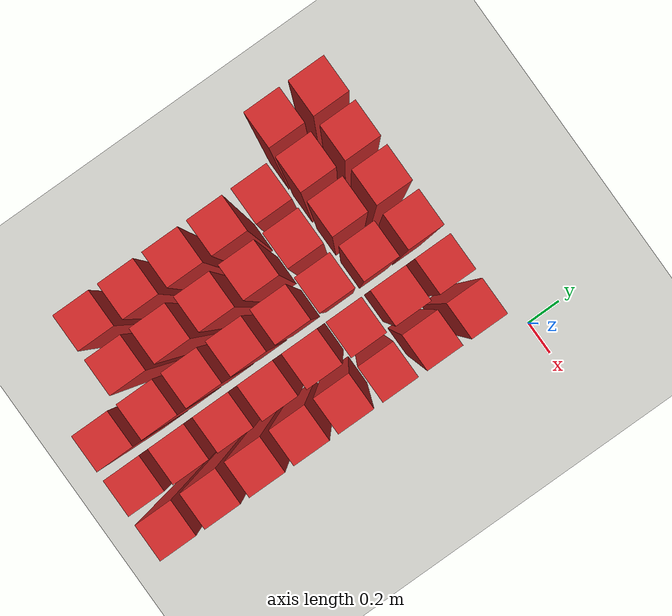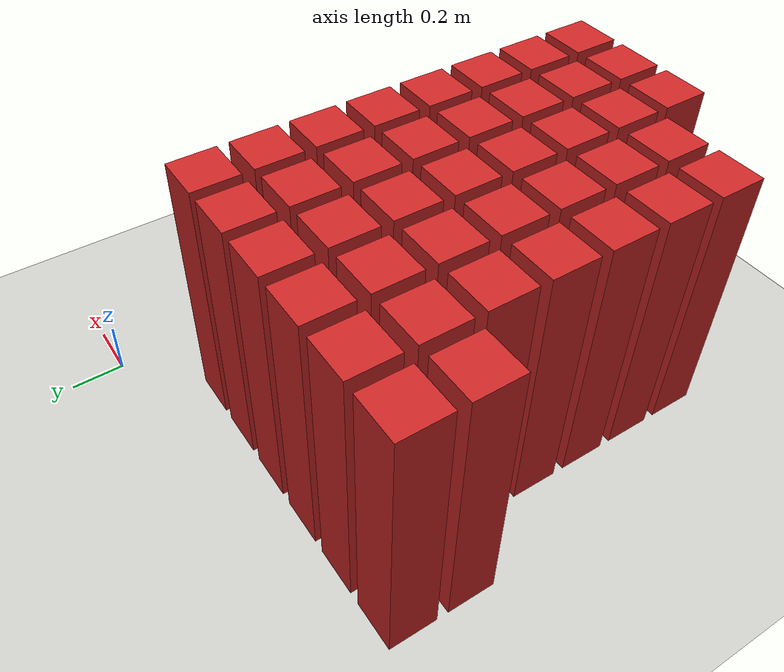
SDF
<sdf version="1.7">
 <world name="default">
  <model name="ground_plane">
   <static>1</static>
   <link name="link">
    <collision name="collision">
     <geometry><plane><normal>0 0 1</normal><size>100 100</size></plane></geometry>
     <surface>
      <contact><collide_bitmask>65535</collide_bitmask></contact>
      <friction><ode><mu>100</mu><mu2>50</mu2></ode></friction>
     </surface>
    </collision>
    <visual name="visual">
     <cast_shadows>0</cast_shadows>
     <geometry><plane><normal>0 0 1</normal><size>100 100</size></plane></geometry>
     <material>
      <script><uri>file://media/materials/scripts/gazebo.material</uri><name>Gazebo/CeilingTiled</name></script>
     </material>
    </visual>
   </link>
  </model>
  <model name="wall77">
   <link name="link">
    <pose>0 0 0.5 0 -0 0</pose>
    <inertial>
     <mass>0.5167</mass>
     <inertia>
      <ixx>0.000861167</ixx>
      <ixy>0</ixy>
      <ixz>0</ixz>
      <iyy>0.000861167</iyy>
      <iyz>0</iyz>
      <izz>0.000861167</izz>
     </inertia>
    </inertial>
    <collision name="collision">
     <geometry><box><size>0.21 0.21 1</size></box></geometry>
     <surface>
      <contact>
       <poissons_ratio>0.347</poissons_ratio>
       <elastic_modulus>8.8e+09</elastic_modulus>
       <ode><kp>100000</kp><kd>100</kd><max_vel>100</max_vel><min_depth>0.001</min_depth></ode>
      </contact>
      <friction>
       <torsional>
        <coefficient>1</coefficient>
        <use_patch_radius>0</use_patch_radius>
        <surface_radius>0.01</surface_radius>
       </torsional>
      </friction>
     </surface>
    </collision>
    <visual name="visual">
     <geometry><box><size>0.175 0.175 1</size></box></geometry>
     <material>
      <script><uri>file://media/materials/scripts/gazebo.material</uri><name>Gazebo/Red</name></script>
     </material>
    </visual>
   </link>
   <pose>-0.76087 -1.84783 0 0 -0 0</pose>
  </model>
  <model name="wall78">
   <link name="link">
    <pose>0 0 0.5 0 -0 0</pose>
    <inertial>
     <mass>0.5167</mass>
     <inertia>
      <ixx>0.000861167</ixx>
      <ixy>0</ixy>
      <ixz>0</ixz>
      <iyy>0.000861167</iyy>
      <iyz>0</iyz>
      <izz>0.000861167</izz>
     </inertia>
    </inertial>
    <collision name="collision">
     <geometry><box><size>0.21 0.21 1</size></box></geometry>
     <surface>
      <contact>
       <poissons_ratio>0.347</poissons_ratio>
       <elastic_modulus>8.8e+09</elastic_modulus>
       <ode><kp>100000</kp><kd>100</kd><max_vel>100</max_vel><min_depth>0.001</min_depth></ode>
      </contact>
      <friction>
       <torsional>
        <coefficient>1</coefficient>
        <use_patch_radius>0</use_patch_radius>
        <surface_radius>0.01</surface_radius>
       </torsional>
      </friction>
     </surface>
    </collision>
    <visual name="visual">
     <geometry><box><size>0.175 0.175 1</size></box></geometry>
     <material>
      <script><uri>file://media/materials/scripts/gazebo.material</uri><name>Gazebo/Red</name></script>
     </material>
    </visual>
   </link>
   <pose>-0.543478 -1.84783 0 0 -0 0</pose>
  </model>
  <model name="wall79">
   <link name="link">
    <pose>0 0 0.5 0 -0 0</pose>
    <inertial>
     <mass>0.5167</mass>
     <inertia>
      <ixx>0.000861167</ixx>
      <ixy>0</ixy>
      <ixz>0</ixz>
      <iyy>0.000861167</iyy>
      <iyz>0</iyz>
      <izz>0.000861167</izz>
     </inertia>
    </inertial>
    <collision name="collision">
     <geometry><box><size>0.21 0.21 1</size></box></geometry>
     <surface>
      <contact>
       <poissons_ratio>0.347</poissons_ratio>
       <elastic_modulus>8.8e+09</elastic_modulus>
       <ode><kp>100000</kp><kd>100</kd><max_vel>100</max_vel><min_depth>0.001</min_depth></ode>
      </contact>
      <friction>
       <torsional>
        <coefficient>1</coefficient>
        <use_patch_radius>0</use_patch_radius>
        <surface_radius>0.01</surface_radius>
       </torsional>
      </friction>
     </surface>
    </collision>
    <visual name="visual">
     <geometry><box><size>0.175 0.175 1</size></box></geometry>
     <material>
      <script><uri>file://media/materials/scripts/gazebo.material</uri><name>Gazebo/Red</name></script>
     </material>
    </visual>
   </link>
   <pose>-0.326087 -1.84783 0 0 -0 0</pose>
  </model>
  <model name="wall98">
   <link name="link">
    <pose>0 0 0.5 0 -0 0</pose>
    <inertial>
     <mass>0.5167</mass>
     <inertia>
      <ixx>0.000861167</ixx>
      <ixy>0</ixy>
      <ixz>0</ixz>
      <iyy>0.000861167</iyy>
      <iyz>0</iyz>
      <izz>0.000861167</izz>
     </inertia>
    </inertial>
    <collision name="collision">
     <geometry><box><size>0.21 0.21 1</size></box></geometry>
     <surface>
      <contact>
       <poissons_ratio>0.347</poissons_ratio>
       <elastic_modulus>8.8e+09</elastic_modulus>
       <ode><kp>100000</kp><kd>100</kd><max_vel>100</max_vel><min_depth>0.001</min_depth></ode>
      </contact>
      <friction>
       <torsional>
        <coefficient>1</coefficient>
        <use_patch_radius>0</use_patch_radius>
        <surface_radius>0.01</surface_radius>
       </torsional>
      </friction>
     </surface>
    </collision>
    <visual name="visual">
     <geometry><box><size>0.175 0.175 1</size></box></geometry>
     <material>
      <script><uri>file://media/materials/scripts/gazebo.material</uri><name>Gazebo/Red</name></script>
     </material>
    </visual>
   </link>
   <pose>-1.19565 -1.63043 0 0 -0 0</pose>
  </model>
  <model name="wall99">
   <link name="link">
    <pose>0 0 0.5 0 -0 0</pose>
    <inertial>
     <mass>0.5167</mass>
     <inertia>
      <ixx>0.000861167</ixx>
      <ixy>0</ixy>
      <ixz>0</ixz>
      <iyy>0.000861167</iyy>
      <iyz>0</iyz>
      <izz>0.000861167</izz>
     </inertia>
    </inertial>
    <collision name="collision">
     <geometry><box><size>0.21 0.21 1</size></box></geometry>
     <surface>
      <contact>
       <poissons_ratio>0.347</poissons_ratio>
       <elastic_modulus>8.8e+09</elastic_modulus>
       <ode><kp>100000</kp><kd>100</kd><max_vel>100</max_vel><min_depth>0.001</min_depth></ode>
      </contact>
      <friction>
       <torsional>
        <coefficient>1</coefficient>
        <use_patch_radius>0</use_patch_radius>
        <surface_radius>0.01</surface_radius>
       </torsional>
      </friction>
     </surface>
    </collision>
    <visual name="visual">
     <geometry><box><size>0.175 0.175 1</size></box></geometry>
     <material>
      <script><uri>file://media/materials/scripts/gazebo.material</uri><name>Gazebo/Red</name></script>
     </material>
    </visual>
   </link>
   <pose>-0.978261 -1.63043 0 0 -0 0</pose>
  </model>
  <model name="wall100">
   <link name="link">
    <pose>0 0 0.5 0 -0 0</pose>
    <inertial>
     <mass>0.5167</mass>
     <inertia>
      <ixx>0.000861167</ixx>
      <ixy>0</ixy>
      <ixz>0</ixz>
      <iyy>0.000861167</iyy>
      <iyz>0</iyz>
      <izz>0.000861167</izz>
     </inertia>
    </inertial>
    <collision name="collision">
     <geometry><box><size>0.21 0.21 1</size></box></geometry>
     <surface>
      <contact>
       <poissons_ratio>0.347</poissons_ratio>
       <elastic_modulus>8.8e+09</elastic_modulus>
       <ode><kp>100000</kp><kd>100</kd><max_vel>100</max_vel><min_depth>0.001</min_depth></ode>
      </contact>
      <friction>
       <torsional>
        <coefficient>1</coefficient>
        <use_patch_radius>0</use_patch_radius>
        <surface_radius>0.01</surface_radius>
       </torsional>
      </friction>
     </surface>
    </collision>
    <visual name="visual">
     <geometry><box><size>0.175 0.175 1</size></box></geometry>
     <material>
      <script><uri>file://media/materials/scripts/gazebo.material</uri><name>Gazebo/Red</name></script>
     </material>
    </visual>
   </link>
   <pose>-0.76087 -1.63043 0 0 -0 0</pose>
  </model>
  <model name="wall101">
   <link name="link">
    <pose>0 0 0.5 0 -0 0</pose>
    <inertial>
     <mass>0.5167</mass>
     <inertia>
      <ixx>0.000861167</ixx>
      <ixy>0</ixy>
      <ixz>0</ixz>
      <iyy>0.000861167</iyy>
      <iyz>0</iyz>
      <izz>0.000861167</izz>
     </inertia>
    </inertial>
    <collision name="collision">
     <geometry><box><size>0.21 0.21 1</size></box></geometry>
     <surface>
      <contact>
       <poissons_ratio>0.347</poissons_ratio>
       <elastic_modulus>8.8e+09</elastic_modulus>
       <ode><kp>100000</kp><kd>100</kd><max_vel>100</max_vel><min_depth>0.001</min_depth></ode>
      </contact>
      <friction>
       <torsional>
        <coefficient>1</coefficient>
        <use_patch_radius>0</use_patch_radius>
        <surface_radius>0.01</surface_radius>
       </torsional>
      </friction>
     </surface>
    </collision>
    <visual name="visual">
     <geometry><box><size>0.175 0.175 1</size></box></geometry>
     <material>
      <script><uri>file://media/materials/scripts/gazebo.material</uri><name>Gazebo/Red</name></script>
     </material>
    </visual>
   </link>
   <pose>-0.543478 -1.63043 0 0 -0 0</pose>
  </model>
  <model name="wall102">
   <link name="link">
    <pose>0 0 0.5 0 -0 0</pose>
    <inertial>
     <mass>0.5167</mass>
     <inertia>
      <ixx>0.000861167</ixx>
      <ixy>0</ixy>
      <ixz>0</ixz>
      <iyy>0.000861167</iyy>
      <iyz>0</iyz>
      <izz>0.000861167</izz>
     </inertia>
    </inertial>
    <collision name="collision">
     <geometry><box><size>0.21 0.21 1</size></box></geometry>
     <surface>
      <contact>
       <poissons_ratio>0.347</poissons_ratio>
       <elastic_modulus>8.8e+09</elastic_modulus>
       <ode><kp>100000</kp><kd>100</kd><max_vel>100</max_vel><min_depth>0.001</min_depth></ode>
      </contact>
      <friction>
       <torsional>
        <coefficient>1</coefficient>
        <use_patch_radius>0</use_patch_radius>
        <surface_radius>0.01</surface_radius>
       </torsional>
      </friction>
     </surface>
    </collision>
    <visual name="visual">
     <geometry><box><size>0.175 0.175 1</size></box></geometry>
     <material>
      <script><uri>file://media/materials/scripts/gazebo.material</uri><name>Gazebo/Red</name></script>
     </material>
    </visual>
   </link>
   <pose>-0.326087 -1.63043 0 0 -0 0</pose>
  </model>
  <model name="wall121">
   <link name="link">
    <pose>0 0 0.5 0 -0 0</pose>
    <inertial>
     <mass>0.5167</mass>
     <inertia>
      <ixx>0.000861167</ixx>
      <ixy>0</ixy>
      <ixz>0</ixz>
      <iyy>0.000861167</iyy>
      <iyz>0</iyz>
      <izz>0.000861167</izz>
     </inertia>
    </inertial>
    <collision name="collision">
     <geometry><box><size>0.21 0.21 1</size></box></geometry>
     <surface>
      <contact>
       <poissons_ratio>0.347</poissons_ratio>
       <elastic_modulus>8.8e+09</elastic_modulus>
       <ode><kp>100000</kp><kd>100</kd><max_vel>100</max_vel><min_depth>0.001</min_depth></ode>
      </contact>
      <friction>
       <torsional>
        <coefficient>1</coefficient>
        <use_patch_radius>0</use_patch_radius>
        <surface_radius>0.01</surface_radius>
       </torsional>
      </friction>
     </surface>
    </collision>
    <visual name="visual">
     <geometry><box><size>0.175 0.175 1</size></box></geometry>
     <material>
      <script><uri>file://media/materials/scripts/gazebo.material</uri><name>Gazebo/Red</name></script>
     </material>
    </visual>
   </link>
   <pose>-1.19565 -1.41304 0 0 -0 0</pose>
  </model>
  <model name="wall122">
   <link name="link">
    <pose>0 0 0.5 0 -0 0</pose>
    <inertial>
     <mass>0.5167</mass>
     <inertia>
      <ixx>0.000861167</ixx>
      <ixy>0</ixy>
      <ixz>0</ixz>
      <iyy>0.000861167</iyy>
      <iyz>0</iyz>
      <izz>0.000861167</izz>
     </inertia>
    </inertial>
    <collision name="collision">
     <geometry><box><size>0.21 0.21 1</size></box></geometry>
     <surface>
      <contact>
       <poissons_ratio>0.347</poissons_ratio>
       <elastic_modulus>8.8e+09</elastic_modulus>
       <ode><kp>100000</kp><kd>100</kd><max_vel>100</max_vel><min_depth>0.001</min_depth></ode>
      </contact>
      <friction>
       <torsional>
        <coefficient>1</coefficient>
        <use_patch_radius>0</use_patch_radius>
        <surface_radius>0.01</surface_radius>
       </torsional>
      </friction>
     </surface>
    </collision>
    <visual name="visual">
     <geometry><box><size>0.175 0.175 1</size></box></geometry>
     <material>
      <script><uri>file://media/materials/scripts/gazebo.material</uri><name>Gazebo/Red</name></script>
     </material>
    </visual>
   </link>
   <pose>-0.978261 -1.41304 0 0 -0 0</pose>
  </model>
  <model name="wall123">
   <link name="link">
    <pose>0 0 0.5 0 -0 0</pose>
    <inertial>
     <mass>0.5167</mass>
     <inertia>
      <ixx>0.000861167</ixx>
      <ixy>0</ixy>
      <ixz>0</ixz>
      <iyy>0.000861167</iyy>
      <iyz>0</iyz>
      <izz>0.000861167</izz>
     </inertia>
    </inertial>
    <collision name="collision">
     <geometry><box><size>0.21 0.21 1</size></box></geometry>
     <surface>
      <contact>
       <poissons_ratio>0.347</poissons_ratio>
       <elastic_modulus>8.8e+09</elastic_modulus>
       <ode><kp>100000</kp><kd>100</kd><max_vel>100</max_vel><min_depth>0.001</min_depth></ode>
      </contact>
      <friction>
       <torsional>
        <coefficient>1</coefficient>
        <use_patch_radius>0</use_patch_radius>
        <surface_radius>0.01</surface_radius>
       </torsional>
      </friction>
     </surface>
    </collision>
    <visual name="visual">
     <geometry><box><size>0.175 0.175 1</size></box></geometry>
     <material>
      <script><uri>file://media/materials/scripts/gazebo.material</uri><name>Gazebo/Red</name></script>
     </material>
    </visual>
   </link>
   <pose>-0.76087 -1.41304 0 0 -0 0</pose>
  </model>
  <model name="wall124">
   <link name="link">
    <pose>0 0 0.5 0 -0 0</pose>
    <inertial>
     <mass>0.5167</mass>
     <inertia>
      <ixx>0.000861167</ixx>
      <ixy>0</ixy>
      <ixz>0</ixz>
      <iyy>0.000861167</iyy>
      <iyz>0</iyz>
      <izz>0.000861167</izz>
     </inertia>
    </inertial>
    <collision name="collision">
     <geometry><box><size>0.21 0.21 1</size></box></geometry>
     <surface>
      <contact>
       <poissons_ratio>0.347</poissons_ratio>
       <elastic_modulus>8.8e+09</elastic_modulus>
       <ode><kp>100000</kp><kd>100</kd><max_vel>100</max_vel><min_depth>0.001</min_depth></ode>
      </contact>
      <friction>
       <torsional>
        <coefficient>1</coefficient>
        <use_patch_radius>0</use_patch_radius>
        <surface_radius>0.01</surface_radius>
       </torsional>
      </friction>
     </surface>
    </collision>
    <visual name="visual">
     <geometry><box><size>0.175 0.175 1</size></box></geometry>
     <material>
      <script><uri>file://media/materials/scripts/gazebo.material</uri><name>Gazebo/Red</name></script>
     </material>
    </visual>
   </link>
   <pose>-0.543478 -1.41304 0 0 -0 0</pose>
  </model>
  <model name="wall125">
   <link name="link">
    <pose>0 0 0.5 0 -0 0</pose>
    <inertial>
     <mass>0.5167</mass>
     <inertia>
      <ixx>0.000861167</ixx>
      <ixy>0</ixy>
      <ixz>0</ixz>
      <iyy>0.000861167</iyy>
      <iyz>0</iyz>
      <izz>0.000861167</izz>
     </inertia>
    </inertial>
    <collision name="collision">
     <geometry><box><size>0.21 0.21 1</size></box></geometry>
     <surface>
      <contact>
       <poissons_ratio>0.347</poissons_ratio>
       <elastic_modulus>8.8e+09</elastic_modulus>
       <ode><kp>100000</kp><kd>100</kd><max_vel>100</max_vel><min_depth>0.001</min_depth></ode>
      </contact>
      <friction>
       <torsional>
        <coefficient>1</coefficient>
        <use_patch_radius>0</use_patch_radius>
        <surface_radius>0.01</surface_radius>
       </torsional>
      </friction>
     </surface>
    </collision>
    <visual name="visual">
     <geometry><box><size>0.175 0.175 1</size></box></geometry>
     <material>
      <script><uri>file://media/materials/scripts/gazebo.material</uri><name>Gazebo/Red</name></script>
     </material>
    </visual>
   </link>
   <pose>-0.326087 -1.41304 0 0 -0 0</pose>
  </model>
  <model name="wall144">
   <link name="link">
    <pose>0 0 0.5 0 -0 0</pose>
    <inertial>
     <mass>0.5167</mass>
     <inertia>
      <ixx>0.000861167</ixx>
      <ixy>0</ixy>
      <ixz>0</ixz>
      <iyy>0.000861167</iyy>
      <iyz>0</iyz>
      <izz>0.000861167</izz>
     </inertia>
    </inertial>
    <collision name="collision">
     <geometry><box><size>0.21 0.21 1</size></box></geometry>
     <surface>
      <contact>
       <poissons_ratio>0.347</poissons_ratio>
       <elastic_modulus>8.8e+09</elastic_modulus>
       <ode><kp>100000</kp><kd>100</kd><max_vel>100</max_vel><min_depth>0.001</min_depth></ode>
      </contact>
      <friction>
       <torsional>
        <coefficient>1</coefficient>
        <use_patch_radius>0</use_patch_radius>
        <surface_radius>0.01</surface_radius>
       </torsional>
      </friction>
     </surface>
    </collision>
    <visual name="visual">
     <geometry><box><size>0.175 0.175 1</size></box></geometry>
     <material>
      <script><uri>file://media/materials/scripts/gazebo.material</uri><name>Gazebo/Red</name></script>
     </material>
    </visual>
   </link>
   <pose>-1.19565 -1.19565 0 0 -0 0</pose>
  </model>
  <model name="wall145">
   <link name="link">
    <pose>0 0 0.5 0 -0 0</pose>
    <inertial>
     <mass>0.5167</mass>
     <inertia>
      <ixx>0.000861167</ixx>
      <ixy>0</ixy>
      <ixz>0</ixz>
      <iyy>0.000861167</iyy>
      <iyz>0</iyz>
      <izz>0.000861167</izz>
     </inertia>
    </inertial>
    <collision name="collision">
     <geometry><box><size>0.21 0.21 1</size></box></geometry>
     <surface>
      <contact>
       <poissons_ratio>0.347</poissons_ratio>
       <elastic_modulus>8.8e+09</elastic_modulus>
       <ode><kp>100000</kp><kd>100</kd><max_vel>100</max_vel><min_depth>0.001</min_depth></ode>
      </contact>
      <friction>
       <torsional>
        <coefficient>1</coefficient>
        <use_patch_radius>0</use_patch_radius>
        <surface_radius>0.01</surface_radius>
       </torsional>
      </friction>
     </surface>
    </collision>
    <visual name="visual">
     <geometry><box><size>0.175 0.175 1</size></box></geometry>
     <material>
      <script><uri>file://media/materials/scripts/gazebo.material</uri><name>Gazebo/Red</name></script>
     </material>
    </visual>
   </link>
   <pose>-0.978261 -1.19565 0 0 -0 0</pose>
  </model>
  <model name="wall146">
   <link name="link">
    <pose>0 0 0.5 0 -0 0</pose>
    <inertial>
     <mass>0.5167</mass>
     <inertia>
      <ixx>0.000861167</ixx>
      <ixy>0</ixy>
      <ixz>0</ixz>
      <iyy>0.000861167</iyy>
      <iyz>0</iyz>
      <izz>0.000861167</izz>
     </inertia>
    </inertial>
    <collision name="collision">
     <geometry><box><size>0.21 0.21 1</size></box></geometry>
     <surface>
      <contact>
       <poissons_ratio>0.347</poissons_ratio>
       <elastic_modulus>8.8e+09</elastic_modulus>
       <ode><kp>100000</kp><kd>100</kd><max_vel>100</max_vel><min_depth>0.001</min_depth></ode>
      </contact>
      <friction>
       <torsional>
        <coefficient>1</coefficient>
        <use_patch_radius>0</use_patch_radius>
        <surface_radius>0.01</surface_radius>
       </torsional>
      </friction>
     </surface>
    </collision>
    <visual name="visual">
     <geometry><box><size>0.175 0.175 1</size></box></geometry>
     <material>
      <script><uri>file://media/materials/scripts/gazebo.material</uri><name>Gazebo/Red</name></script>
     </material>
    </visual>
   </link>
   <pose>-0.76087 -1.19565 0 0 -0 0</pose>
  </model>
  <model name="wall147">
   <link name="link">
    <pose>0 0 0.5 0 -0 0</pose>
    <inertial>
     <mass>0.5167</mass>
     <inertia>
      <ixx>0.000861167</ixx>
      <ixy>0</ixy>
      <ixz>0</ixz>
      <iyy>0.000861167</iyy>
      <iyz>0</iyz>
      <izz>0.000861167</izz>
     </inertia>
    </inertial>
    <collision name="collision">
     <geometry><box><size>0.21 0.21 1</size></box></geometry>
     <surface>
      <contact>
       <poissons_ratio>0.347</poissons_ratio>
       <elastic_modulus>8.8e+09</elastic_modulus>
       <ode><kp>100000</kp><kd>100</kd><max_vel>100</max_vel><min_depth>0.001</min_depth></ode>
      </contact>
      <friction>
       <torsional>
        <coefficient>1</coefficient>
        <use_patch_radius>0</use_patch_radius>
        <surface_radius>0.01</surface_radius>
       </torsional>
      </friction>
     </surface>
    </collision>
    <visual name="visual">
     <geometry><box><size>0.175 0.175 1</size></box></geometry>
     <material>
      <script><uri>file://media/materials/scripts/gazebo.material</uri><name>Gazebo/Red</name></script>
     </material>
    </visual>
   </link>
   <pose>-0.543478 -1.19565 0 0 -0 0</pose>
  </model>
  <model name="wall148">
   <link name="link">
    <pose>0 0 0.5 0 -0 0</pose>
    <inertial>
     <mass>0.5167</mass>
     <inertia>
      <ixx>0.000861167</ixx>
      <ixy>0</ixy>
      <ixz>0</ixz>
      <iyy>0.000861167</iyy>
      <iyz>0</iyz>
      <izz>0.000861167</izz>
     </inertia>
    </inertial>
    <collision name="collision">
     <geometry><box><size>0.21 0.21 1</size></box></geometry>
     <surface>
      <contact>
       <poissons_ratio>0.347</poissons_ratio>
       <elastic_modulus>8.8e+09</elastic_modulus>
       <ode><kp>100000</kp><kd>100</kd><max_vel>100</max_vel><min_depth>0.001</min_depth></ode>
      </contact>
      <friction>
       <torsional>
        <coefficient>1</coefficient>
        <use_patch_radius>0</use_patch_radius>
        <surface_radius>0.01</surface_radius>
       </torsional>
      </friction>
     </surface>
    </collision>
    <visual name="visual">
     <geometry><box><size>0.175 0.175 1</size></box></geometry>
     <material>
      <script><uri>file://media/materials/scripts/gazebo.material</uri><name>Gazebo/Red</name></script>
     </material>
    </visual>
   </link>
   <pose>-0.326087 -1.19565 0 0 -0 0</pose>
  </model>
  <model name="wall167">
   <link name="link">
    <pose>0 0 0.5 0 -0 0</pose>
    <inertial>
     <mass>0.5167</mass>
     <inertia>
      <ixx>0.000861167</ixx>
      <ixy>0</ixy>
      <ixz>0</ixz>
      <iyy>0.000861167</iyy>
      <iyz>0</iyz>
      <izz>0.000861167</izz>
     </inertia>
    </inertial>
    <collision name="collision">
     <geometry><box><size>0.21 0.21 1</size></box></geometry>
     <surface>
      <contact>
       <poissons_ratio>0.347</poissons_ratio>
       <elastic_modulus>8.8e+09</elastic_modulus>
       <ode><kp>100000</kp><kd>100</kd><max_vel>100</max_vel><min_depth>0.001</min_depth></ode>
      </contact>
      <friction>
       <torsional>
        <coefficient>1</coefficient>
        <use_patch_radius>0</use_patch_radius>
        <surface_radius>0.01</surface_radius>
       </torsional>
      </friction>
     </surface>
    </collision>
    <visual name="visual">
     <geometry><box><size>0.175 0.175 1</size></box></geometry>
     <material>
      <script><uri>file://media/materials/scripts/gazebo.material</uri><name>Gazebo/Red</name></script>
     </material>
    </visual>
   </link>
   <pose>-1.19565 -0.978261 0 0 -0 0</pose>
  </model>
  <model name="wall168">
   <link name="link">
    <pose>0 0 0.5 0 -0 0</pose>
    <inertial>
     <mass>0.5167</mass>
     <inertia>
      <ixx>0.000861167</ixx>
      <ixy>0</ixy>
      <ixz>0</ixz>
      <iyy>0.000861167</iyy>
      <iyz>0</iyz>
      <izz>0.000861167</izz>
     </inertia>
    </inertial>
    <collision name="collision">
     <geometry><box><size>0.21 0.21 1</size></box></geometry>
     <surface>
      <contact>
       <poissons_ratio>0.347</poissons_ratio>
       <elastic_modulus>8.8e+09</elastic_modulus>
       <ode><kp>100000</kp><kd>100</kd><max_vel>100</max_vel><min_depth>0.001</min_depth></ode>
      </contact>
      <friction>
       <torsional>
        <coefficient>1</coefficient>
        <use_patch_radius>0</use_patch_radius>
        <surface_radius>0.01</surface_radius>
       </torsional>
      </friction>
     </surface>
    </collision>
    <visual name="visual">
     <geometry><box><size>0.175 0.175 1</size></box></geometry>
     <material>
      <script><uri>file://media/materials/scripts/gazebo.material</uri><name>Gazebo/Red</name></script>
     </material>
    </visual>
   </link>
   <pose>-0.978261 -0.978261 0 0 -0 0</pose>
  </model>
  <model name="wall169">
   <link name="link">
    <pose>0 0 0.5 0 -0 0</pose>
    <inertial>
     <mass>0.5167</mass>
     <inertia>
      <ixx>0.000861167</ixx>
      <ixy>0</ixy>
      <ixz>0</ixz>
      <iyy>0.000861167</iyy>
      <iyz>0</iyz>
      <izz>0.000861167</izz>
     </inertia>
    </inertial>
    <collision name="collision">
     <geometry><box><size>0.21 0.21 1</size></box></geometry>
     <surface>
      <contact>
       <poissons_ratio>0.347</poissons_ratio>
       <elastic_modulus>8.8e+09</elastic_modulus>
       <ode><kp>100000</kp><kd>100</kd><max_vel>100</max_vel><min_depth>0.001</min_depth></ode>
      </contact>
      <friction>
       <torsional>
        <coefficient>1</coefficient>
        <use_patch_radius>0</use_patch_radius>
        <surface_radius>0.01</surface_radius>
       </torsional>
      </friction>
     </surface>
    </collision>
    <visual name="visual">
     <geometry><box><size>0.175 0.175 1</size></box></geometry>
     <material>
      <script><uri>file://media/materials/scripts/gazebo.material</uri><name>Gazebo/Red</name></script>
     </material>
    </visual>
   </link>
   <pose>-0.76087 -0.978261 0 0 -0 0</pose>
  </model>
  <model name="wall170">
   <link name="link">
    <pose>0 0 0.5 0 -0 0</pose>
    <inertial>
     <mass>0.5167</mass>
     <inertia>
      <ixx>0.000861167</ixx>
      <ixy>0</ixy>
      <ixz>0</ixz>
      <iyy>0.000861167</iyy>
      <iyz>0</iyz>
      <izz>0.000861167</izz>
     </inertia>
    </inertial>
    <collision name="collision">
     <geometry><box><size>0.21 0.21 1</size></box></geometry>
     <surface>
      <contact>
       <poissons_ratio>0.347</poissons_ratio>
       <elastic_modulus>8.8e+09</elastic_modulus>
       <ode><kp>100000</kp><kd>100</kd><max_vel>100</max_vel><min_depth>0.001</min_depth></ode>
      </contact>
      <friction>
       <torsional>
        <coefficient>1</coefficient>
        <use_patch_radius>0</use_patch_radius>
        <surface_radius>0.01</surface_radius>
       </torsional>
      </friction>
     </surface>
    </collision>
    <visual name="visual">
     <geometry><box><size>0.175 0.175 1</size></box></geometry>
     <material>
      <script><uri>file://media/materials/scripts/gazebo.material</uri><name>Gazebo/Red</name></script>
     </material>
    </visual>
   </link>
   <pose>-0.543478 -0.978261 0 0 -0 0</pose>
  </model>
  <model name="wall171">
   <link name="link">
    <pose>0 0 0.5 0 -0 0</pose>
    <inertial>
     <mass>0.5167</mass>
     <inertia>
      <ixx>0.000861167</ixx>
      <ixy>0</ixy>
      <ixz>0</ixz>
      <iyy>0.000861167</iyy>
      <iyz>0</iyz>
      <izz>0.000861167</izz>
     </inertia>
    </inertial>
    <collision name="collision">
     <geometry><box><size>0.21 0.21 1</size></box></geometry>
     <surface>
      <contact>
       <poissons_ratio>0.347</poissons_ratio>
       <elastic_modulus>8.8e+09</elastic_modulus>
       <ode><kp>100000</kp><kd>100</kd><max_vel>100</max_vel><min_depth>0.001</min_depth></ode>
      </contact>
      <friction>
       <torsional>
        <coefficient>1</coefficient>
        <use_patch_radius>0</use_patch_radius>
        <surface_radius>0.01</surface_radius>
       </torsional>
      </friction>
     </surface>
    </collision>
    <visual name="visual">
     <geometry><box><size>0.175 0.175 1</size></box></geometry>
     <material>
      <script><uri>file://media/materials/scripts/gazebo.material</uri><name>Gazebo/Red</name></script>
     </material>
    </visual>
   </link>
   <pose>-0.326087 -0.978261 0 0 -0 0</pose>
  </model>
  <model name="wall190">
   <link name="link">
    <pose>0 0 0.5 0 -0 0</pose>
    <inertial>
     <mass>0.5167</mass>
     <inertia>
      <ixx>0.000861167</ixx>
      <ixy>0</ixy>
      <ixz>0</ixz>
      <iyy>0.000861167</iyy>
      <iyz>0</iyz>
      <izz>0.000861167</izz>
     </inertia>
    </inertial>
    <collision name="collision">
     <geometry><box><size>0.21 0.21 1</size></box></geometry>
     <surface>
      <contact>
       <poissons_ratio>0.347</poissons_ratio>
       <elastic_modulus>8.8e+09</elastic_modulus>
       <ode><kp>100000</kp><kd>100</kd><max_vel>100</max_vel><min_depth>0.001</min_depth></ode>
      </contact>
      <friction>
       <torsional>
        <coefficient>1</coefficient>
        <use_patch_radius>0</use_patch_radius>
        <surface_radius>0.01</surface_radius>
       </torsional>
      </friction>
     </surface>
    </collision>
    <visual name="visual">
     <geometry><box><size>0.175 0.175 1</size></box></geometry>
     <material>
      <script><uri>file://media/materials/scripts/gazebo.material</uri><name>Gazebo/Red</name></script>
     </material>
    </visual>
   </link>
   <pose>-1.19565 -0.76087 0 0 -0 0</pose>
  </model>
  <model name="wall191">
   <link name="link">
    <pose>0 0 0.5 0 -0 0</pose>
    <inertial>
     <mass>0.5167</mass>
     <inertia>
      <ixx>0.000861167</ixx>
      <ixy>0</ixy>
      <ixz>0</ixz>
      <iyy>0.000861167</iyy>
      <iyz>0</iyz>
      <izz>0.000861167</izz>
     </inertia>
    </inertial>
    <collision name="collision">
     <geometry><box><size>0.21 0.21 1</size></box></geometry>
     <surface>
      <contact>
       <poissons_ratio>0.347</poissons_ratio>
       <elastic_modulus>8.8e+09</elastic_modulus>
       <ode><kp>100000</kp><kd>100</kd><max_vel>100</max_vel><min_depth>0.001</min_depth></ode>
      </contact>
      <friction>
       <torsional>
        <coefficient>1</coefficient>
        <use_patch_radius>0</use_patch_radius>
        <surface_radius>0.01</surface_radius>
       </torsional>
      </friction>
     </surface>
    </collision>
    <visual name="visual">
     <geometry><box><size>0.175 0.175 1</size></box></geometry>
     <material>
      <script><uri>file://media/materials/scripts/gazebo.material</uri><name>Gazebo/Red</name></script>
     </material>
    </visual>
   </link>
   <pose>-0.978261 -0.76087 0 0 -0 0</pose>
  </model>
  <model name="wall192">
   <link name="link">
    <pose>0 0 0.5 0 -0 0</pose>
    <inertial>
     <mass>0.5167</mass>
     <inertia>
      <ixx>0.000861167</ixx>
      <ixy>0</ixy>
      <ixz>0</ixz>
      <iyy>0.000861167</iyy>
      <iyz>0</iyz>
      <izz>0.000861167</izz>
     </inertia>
    </inertial>
    <collision name="collision">
     <geometry><box><size>0.21 0.21 1</size></box></geometry>
     <surface>
      <contact>
       <poissons_ratio>0.347</poissons_ratio>
       <elastic_modulus>8.8e+09</elastic_modulus>
       <ode><kp>100000</kp><kd>100</kd><max_vel>100</max_vel><min_depth>0.001</min_depth></ode>
      </contact>
      <friction>
       <torsional>
        <coefficient>1</coefficient>
        <use_patch_radius>0</use_patch_radius>
        <surface_radius>0.01</surface_radius>
       </torsional>
      </friction>
     </surface>
    </collision>
    <visual name="visual">
     <geometry><box><size>0.175 0.175 1</size></box></geometry>
     <material>
      <script><uri>file://media/materials/scripts/gazebo.material</uri><name>Gazebo/Red</name></script>
     </material>
    </visual>
   </link>
   <pose>-0.76087 -0.76087 0 0 -0 0</pose>
  </model>
  <model name="wall193">
   <link name="link">
    <pose>0 0 0.5 0 -0 0</pose>
    <inertial>
     <mass>0.5167</mass>
     <inertia>
      <ixx>0.000861167</ixx>
      <ixy>0</ixy>
      <ixz>0</ixz>
      <iyy>0.000861167</iyy>
      <iyz>0</iyz>
      <izz>0.000861167</izz>
     </inertia>
    </inertial>
    <collision name="collision">
     <geometry><box><size>0.21 0.21 1</size></box></geometry>
     <surface>
      <contact>
       <poissons_ratio>0.347</poissons_ratio>
       <elastic_modulus>8.8e+09</elastic_modulus>
       <ode><kp>100000</kp><kd>100</kd><max_vel>100</max_vel><min_depth>0.001</min_depth></ode>
      </contact>
      <friction>
       <torsional>
        <coefficient>1</coefficient>
        <use_patch_radius>0</use_patch_radius>
        <surface_radius>0.01</surface_radius>
       </torsional>
      </friction>
     </surface>
    </collision>
    <visual name="visual">
     <geometry><box><size>0.175 0.175 1</size></box></geometry>
     <material>
      <script><uri>file://media/materials/scripts/gazebo.material</uri><name>Gazebo/Red</name></script>
     </material>
    </visual>
   </link>
   <pose>-0.543478 -0.76087 0 0 -0 0</pose>
  </model>
  <model name="wall194">
   <link name="link">
    <pose>0 0 0.5 0 -0 0</pose>
    <inertial>
     <mass>0.5167</mass>
     <inertia>
      <ixx>0.000861167</ixx>
      <ixy>0</ixy>
      <ixz>0</ixz>
      <iyy>0.000861167</iyy>
      <iyz>0</iyz>
      <izz>0.000861167</izz>
     </inertia>
    </inertial>
    <collision name="collision">
     <geometry><box><size>0.21 0.21 1</size></box></geometry>
     <surface>
      <contact>
       <poissons_ratio>0.347</poissons_ratio>
       <elastic_modulus>8.8e+09</elastic_modulus>
       <ode><kp>100000</kp><kd>100</kd><max_vel>100</max_vel><min_depth>0.001</min_depth></ode>
      </contact>
      <friction>
       <torsional>
        <coefficient>1</coefficient>
        <use_patch_radius>0</use_patch_radius>
        <surface_radius>0.01</surface_radius>
       </torsional>
      </friction>
     </surface>
    </collision>
    <visual name="visual">
     <geometry><box><size>0.175 0.175 1</size></box></geometry>
     <material>
      <script><uri>file://media/materials/scripts/gazebo.material</uri><name>Gazebo/Red</name></script>
     </material>
    </visual>
   </link>
   <pose>-0.326087 -0.76087 0 0 -0 0</pose>
  </model>
  <model name="wall212">
   <link name="link">
    <pose>0 0 0.5 0 -0 0</pose>
    <inertial>
     <mass>0.5167</mass>
     <inertia>
      <ixx>0.000861167</ixx>
      <ixy>0</ixy>
      <ixz>0</ixz>
      <iyy>0.000861167</iyy>
      <iyz>0</iyz>
      <izz>0.000861167</izz>
     </inertia>
    </inertial>
    <collision name="collision">
     <geometry><box><size>0.21 0.21 1</size></box></geometry>
     <surface>
      <contact>
       <poissons_ratio>0.347</poissons_ratio>
       <elastic_modulus>8.8e+09</elastic_modulus>
       <ode><kp>100000</kp><kd>100</kd><max_vel>100</max_vel><min_depth>0.001</min_depth></ode>
      </contact>
      <friction>
       <torsional>
        <coefficient>1</coefficient>
        <use_patch_radius>0</use_patch_radius>
        <surface_radius>0.01</surface_radius>
       </torsional>
      </friction>
     </surface>
    </collision>
    <visual name="visual">
     <geometry><box><size>0.175 0.175 1</size></box></geometry>
     <material>
      <script><uri>file://media/materials/scripts/gazebo.material</uri><name>Gazebo/Red</name></script>
     </material>
    </visual>
   </link>
   <pose>-1.41304 -0.543478 0 0 -0 0</pose>
  </model>
  <model name="wall213">
   <link name="link">
    <pose>0 0 0.5 0 -0 0</pose>
    <inertial>
     <mass>0.5167</mass>
     <inertia>
      <ixx>0.000861167</ixx>
      <ixy>0</ixy>
      <ixz>0</ixz>
      <iyy>0.000861167</iyy>
      <iyz>0</iyz>
      <izz>0.000861167</izz>
     </inertia>
    </inertial>
    <collision name="collision">
     <geometry><box><size>0.21 0.21 1</size></box></geometry>
     <surface>
      <contact>
       <poissons_ratio>0.347</poissons_ratio>
       <elastic_modulus>8.8e+09</elastic_modulus>
       <ode><kp>100000</kp><kd>100</kd><max_vel>100</max_vel><min_depth>0.001</min_depth></ode>
      </contact>
      <friction>
       <torsional>
        <coefficient>1</coefficient>
        <use_patch_radius>0</use_patch_radius>
        <surface_radius>0.01</surface_radius>
       </torsional>
      </friction>
     </surface>
    </collision>
    <visual name="visual">
     <geometry><box><size>0.175 0.175 1</size></box></geometry>
     <material>
      <script><uri>file://media/materials/scripts/gazebo.material</uri><name>Gazebo/Red</name></script>
     </material>
    </visual>
   </link>
   <pose>-1.19565 -0.543478 0 0 -0 0</pose>
  </model>
  <model name="wall214">
   <link name="link">
    <pose>0 0 0.5 0 -0 0</pose>
    <inertial>
     <mass>0.5167</mass>
     <inertia>
      <ixx>0.000861167</ixx>
      <ixy>0</ixy>
      <ixz>0</ixz>
      <iyy>0.000861167</iyy>
      <iyz>0</iyz>
      <izz>0.000861167</izz>
     </inertia>
    </inertial>
    <collision name="collision">
     <geometry><box><size>0.21 0.21 1</size></box></geometry>
     <surface>
      <contact>
       <poissons_ratio>0.347</poissons_ratio>
       <elastic_modulus>8.8e+09</elastic_modulus>
       <ode><kp>100000</kp><kd>100</kd><max_vel>100</max_vel><min_depth>0.001</min_depth></ode>
      </contact>
      <friction>
       <torsional>
        <coefficient>1</coefficient>
        <use_patch_radius>0</use_patch_radius>
        <surface_radius>0.01</surface_radius>
       </torsional>
      </friction>
     </surface>
    </collision>
    <visual name="visual">
     <geometry><box><size>0.175 0.175 1</size></box></geometry>
     <material>
      <script><uri>file://media/materials/scripts/gazebo.material</uri><name>Gazebo/Red</name></script>
     </material>
    </visual>
   </link>
   <pose>-0.978261 -0.543478 0 0 -0 0</pose>
  </model>
  <model name="wall215">
   <link name="link">
    <pose>0 0 0.5 0 -0 0</pose>
    <inertial>
     <mass>0.5167</mass>
     <inertia>
      <ixx>0.000861167</ixx>
      <ixy>0</ixy>
      <ixz>0</ixz>
      <iyy>0.000861167</iyy>
      <iyz>0</iyz>
      <izz>0.000861167</izz>
     </inertia>
    </inertial>
    <collision name="collision">
     <geometry><box><size>0.21 0.21 1</size></box></geometry>
     <surface>
      <contact>
       <poissons_ratio>0.347</poissons_ratio>
       <elastic_modulus>8.8e+09</elastic_modulus>
       <ode><kp>100000</kp><kd>100</kd><max_vel>100</max_vel><min_depth>0.001</min_depth></ode>
      </contact>
      <friction>
       <torsional>
        <coefficient>1</coefficient>
        <use_patch_radius>0</use_patch_radius>
        <surface_radius>0.01</surface_radius>
       </torsional>
      </friction>
     </surface>
    </collision>
    <visual name="visual">
     <geometry><box><size>0.175 0.175 1</size></box></geometry>
     <material>
      <script><uri>file://media/materials/scripts/gazebo.material</uri><name>Gazebo/Red</name></script>
     </material>
    </visual>
   </link>
   <pose>-0.76087 -0.543478 0 0 -0 0</pose>
  </model>
  <model name="wall216">
   <link name="link">
    <pose>0 0 0.5 0 -0 0</pose>
    <inertial>
     <mass>0.5167</mass>
     <inertia>
      <ixx>0.000861167</ixx>
      <ixy>0</ixy>
      <ixz>0</ixz>
      <iyy>0.000861167</iyy>
      <iyz>0</iyz>
      <izz>0.000861167</izz>
     </inertia>
    </inertial>
    <collision name="collision">
     <geometry><box><size>0.21 0.21 1</size></box></geometry>
     <surface>
      <contact>
       <poissons_ratio>0.347</poissons_ratio>
       <elastic_modulus>8.8e+09</elastic_modulus>
       <ode><kp>100000</kp><kd>100</kd><max_vel>100</max_vel><min_depth>0.001</min_depth></ode>
      </contact>
      <friction>
       <torsional>
        <coefficient>1</coefficient>
        <use_patch_radius>0</use_patch_radius>
        <surface_radius>0.01</surface_radius>
       </torsional>
      </friction>
     </surface>
    </collision>
    <visual name="visual">
     <geometry><box><size>0.175 0.175 1</size></box></geometry>
     <material>
      <script><uri>file://media/materials/scripts/gazebo.material</uri><name>Gazebo/Red</name></script>
     </material>
    </visual>
   </link>
   <pose>-0.543478 -0.543478 0 0 -0 0</pose>
  </model>
  <model name="wall217">
   <link name="link">
    <pose>0 0 0.5 0 -0 0</pose>
    <inertial>
     <mass>0.5167</mass>
     <inertia>
      <ixx>0.000861167</ixx>
      <ixy>0</ixy>
      <ixz>0</ixz>
      <iyy>0.000861167</iyy>
      <iyz>0</iyz>
      <izz>0.000861167</izz>
     </inertia>
    </inertial>
    <collision name="collision">
     <geometry><box><size>0.21 0.21 1</size></box></geometry>
     <surface>
      <contact>
       <poissons_ratio>0.347</poissons_ratio>
       <elastic_modulus>8.8e+09</elastic_modulus>
       <ode><kp>100000</kp><kd>100</kd><max_vel>100</max_vel><min_depth>0.001</min_depth></ode>
      </contact>
      <friction>
       <torsional>
        <coefficient>1</coefficient>
        <use_patch_radius>0</use_patch_radius>
        <surface_radius>0.01</surface_radius>
       </torsional>
      </friction>
     </surface>
    </collision>
    <visual name="visual">
     <geometry><box><size>0.175 0.175 1</size></box></geometry>
     <material>
      <script><uri>file://media/materials/scripts/gazebo.material</uri><name>Gazebo/Red</name></script>
     </material>
    </visual>
   </link>
   <pose>-0.326087 -0.543478 0 0 -0 0</pose>
  </model>
  <model name="wall235">
   <link name="link">
    <pose>0 0 0.5 0 -0 0</pose>
    <inertial>
     <mass>0.5167</mass>
     <inertia>
      <ixx>0.000861167</ixx>
      <ixy>0</ixy>
      <ixz>0</ixz>
      <iyy>0.000861167</iyy>
      <iyz>0</iyz>
      <izz>0.000861167</izz>
     </inertia>
    </inertial>
    <collision name="collision">
     <geometry><box><size>0.21 0.21 1</size></box></geometry>
     <surface>
      <contact>
       <poissons_ratio>0.347</poissons_ratio>
       <elastic_modulus>8.8e+09</elastic_modulus>
       <ode><kp>100000</kp><kd>100</kd><max_vel>100</max_vel><min_depth>0.001</min_depth></ode>
      </contact>
      <friction>
       <torsional>
        <coefficient>1</coefficient>
        <use_patch_radius>0</use_patch_radius>
        <surface_radius>0.01</surface_radius>
       </torsional>
      </friction>
     </surface>
    </collision>
    <visual name="visual">
     <geometry><box><size>0.175 0.175 1</size></box></geometry>
     <material>
      <script><uri>file://media/materials/scripts/gazebo.material</uri><name>Gazebo/Red</name></script>
     </material>
    </visual>
   </link>
   <pose>-1.41304 -0.326087 0 0 -0 0</pose>
  </model>
  <model name="wall236">
   <link name="link">
    <pose>0 0 0.5 0 -0 0</pose>
    <inertial>
     <mass>0.5167</mass>
     <inertia>
      <ixx>0.000861167</ixx>
      <ixy>0</ixy>
      <ixz>0</ixz>
      <iyy>0.000861167</iyy>
      <iyz>0</iyz>
      <izz>0.000861167</izz>
     </inertia>
    </inertial>
    <collision name="collision">
     <geometry><box><size>0.21 0.21 1</size></box></geometry>
     <surface>
      <contact>
       <poissons_ratio>0.347</poissons_ratio>
       <elastic_modulus>8.8e+09</elastic_modulus>
       <ode><kp>100000</kp><kd>100</kd><max_vel>100</max_vel><min_depth>0.001</min_depth></ode>
      </contact>
      <friction>
       <torsional>
        <coefficient>1</coefficient>
        <use_patch_radius>0</use_patch_radius>
        <surface_radius>0.01</surface_radius>
       </torsional>
      </friction>
     </surface>
    </collision>
    <visual name="visual">
     <geometry><box><size>0.175 0.175 1</size></box></geometry>
     <material>
      <script><uri>file://media/materials/scripts/gazebo.material</uri><name>Gazebo/Red</name></script>
     </material>
    </visual>
   </link>
   <pose>-1.19565 -0.326087 0 0 -0 0</pose>
  </model>
  <model name="wall237">
   <link name="link">
    <pose>0 0 0.5 0 -0 0</pose>
    <inertial>
     <mass>0.5167</mass>
     <inertia>
      <ixx>0.000861167</ixx>
      <ixy>0</ixy>
      <ixz>0</ixz>
      <iyy>0.000861167</iyy>
      <iyz>0</iyz>
      <izz>0.000861167</izz>
     </inertia>
    </inertial>
    <collision name="collision">
     <geometry><box><size>0.21 0.21 1</size></box></geometry>
     <surface>
      <contact>
       <poissons_ratio>0.347</poissons_ratio>
       <elastic_modulus>8.8e+09</elastic_modulus>
       <ode><kp>100000</kp><kd>100</kd><max_vel>100</max_vel><min_depth>0.001</min_depth></ode>
      </contact>
      <friction>
       <torsional>
        <coefficient>1</coefficient>
        <use_patch_radius>0</use_patch_radius>
        <surface_radius>0.01</surface_radius>
       </torsional>
      </friction>
     </surface>
    </collision>
    <visual name="visual">
     <geometry><box><size>0.175 0.175 1</size></box></geometry>
     <material>
      <script><uri>file://media/materials/scripts/gazebo.material</uri><name>Gazebo/Red</name></script>
     </material>
    </visual>
   </link>
   <pose>-0.978261 -0.326087 0 0 -0 0</pose>
  </model>
  <model name="wall238">
   <link name="link">
    <pose>0 0 0.5 0 -0 0</pose>
    <inertial>
     <mass>0.5167</mass>
     <inertia>
      <ixx>0.000861167</ixx>
      <ixy>0</ixy>
      <ixz>0</ixz>
      <iyy>0.000861167</iyy>
      <iyz>0</iyz>
      <izz>0.000861167</izz>
     </inertia>
    </inertial>
    <collision name="collision">
     <geometry><box><size>0.21 0.21 1</size></box></geometry>
     <surface>
      <contact>
       <poissons_ratio>0.347</poissons_ratio>
       <elastic_modulus>8.8e+09</elastic_modulus>
       <ode><kp>100000</kp><kd>100</kd><max_vel>100</max_vel><min_depth>0.001</min_depth></ode>
      </contact>
      <friction>
       <torsional>
        <coefficient>1</coefficient>
        <use_patch_radius>0</use_patch_radius>
        <surface_radius>0.01</surface_radius>
       </torsional>
      </friction>
     </surface>
    </collision>
    <visual name="visual">
     <geometry><box><size>0.175 0.175 1</size></box></geometry>
     <material>
      <script><uri>file://media/materials/scripts/gazebo.material</uri><name>Gazebo/Red</name></script>
     </material>
    </visual>
   </link>
   <pose>-0.76087 -0.326087 0 0 -0 0</pose>
  </model>
  <model name="wall239">
   <link name="link">
    <pose>0 0 0.5 0 -0 0</pose>
    <inertial>
     <mass>0.5167</mass>
     <inertia>
      <ixx>0.000861167</ixx>
      <ixy>0</ixy>
      <ixz>0</ixz>
      <iyy>0.000861167</iyy>
      <iyz>0</iyz>
      <izz>0.000861167</izz>
     </inertia>
    </inertial>
    <collision name="collision">
     <geometry><box><size>0.21 0.21 1</size></box></geometry>
     <surface>
      <contact>
       <poissons_ratio>0.347</poissons_ratio>
       <elastic_modulus>8.8e+09</elastic_modulus>
       <ode><kp>100000</kp><kd>100</kd><max_vel>100</max_vel><min_depth>0.001</min_depth></ode>
      </contact>
      <friction>
       <torsional>
        <coefficient>1</coefficient>
        <use_patch_radius>0</use_patch_radius>
        <surface_radius>0.01</surface_radius>
       </torsional>
      </friction>
     </surface>
    </collision>
    <visual name="visual">
     <geometry><box><size>0.175 0.175 1</size></box></geometry>
     <material>
      <script><uri>file://media/materials/scripts/gazebo.material</uri><name>Gazebo/Red</name></script>
     </material>
    </visual>
   </link>
   <pose>-0.543478 -0.326087 0 0 -0 0</pose>
  </model>
  <model name="wall240">
   <link name="link">
    <pose>0 0 0.5 0 -0 0</pose>
    <inertial>
     <mass>0.5167</mass>
     <inertia>
      <ixx>0.000861167</ixx>
      <ixy>0</ixy>
      <ixz>0</ixz>
      <iyy>0.000861167</iyy>
      <iyz>0</iyz>
      <izz>0.000861167</izz>
     </inertia>
    </inertial>
    <collision name="collision">
     <geometry><box><size>0.21 0.21 1</size></box></geometry>
     <surface>
      <contact>
       <poissons_ratio>0.347</poissons_ratio>
       <elastic_modulus>8.8e+09</elastic_modulus>
       <ode><kp>100000</kp><kd>100</kd><max_vel>100</max_vel><min_depth>0.001</min_depth></ode>
      </contact>
      <friction>
       <torsional>
        <coefficient>1</coefficient>
        <use_patch_radius>0</use_patch_radius>
        <surface_radius>0.01</surface_radius>
       </torsional>
      </friction>
     </surface>
    </collision>
    <visual name="visual">
     <geometry><box><size>0.175 0.175 1</size></box></geometry>
     <material>
      <script><uri>file://media/materials/scripts/gazebo.material</uri><name>Gazebo/Red</name></script>
     </material>
    </visual>
   </link>
   <pose>-0.326087 -0.326087 0 0 -0 0</pose>
  </model>
 </world>
</sdf>
